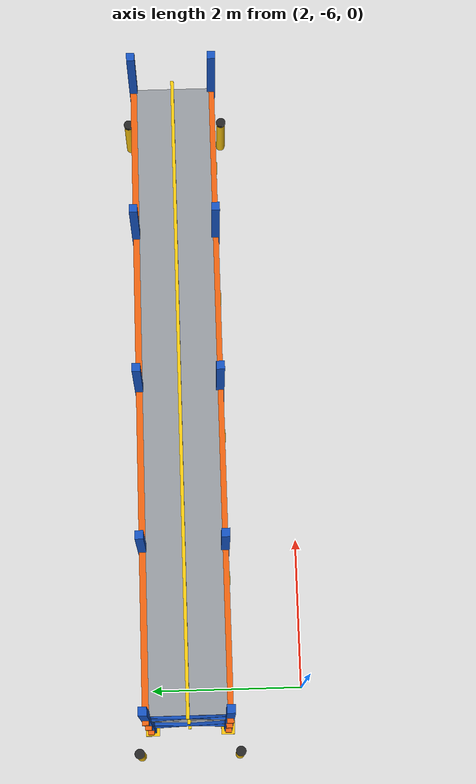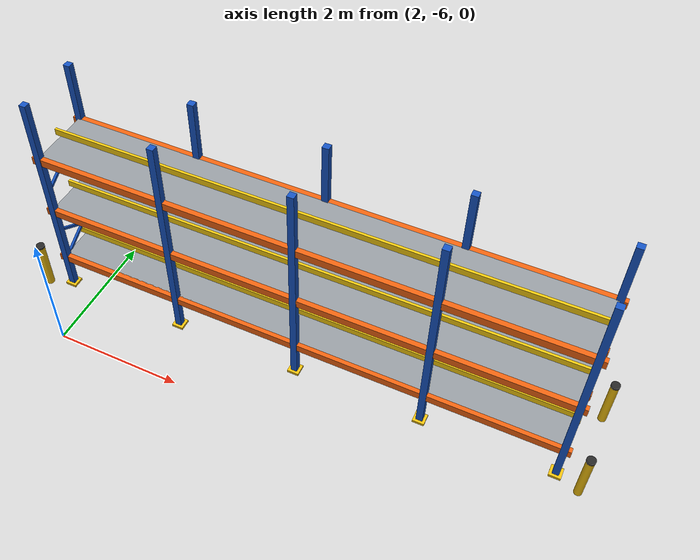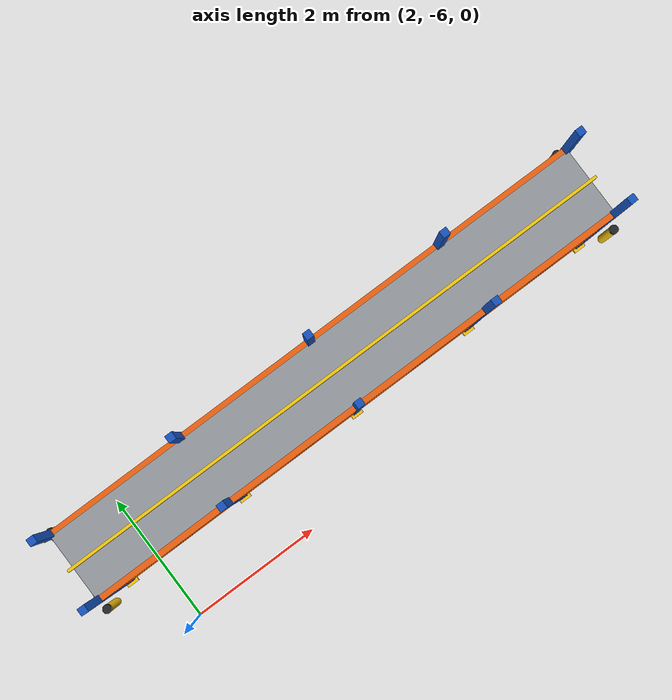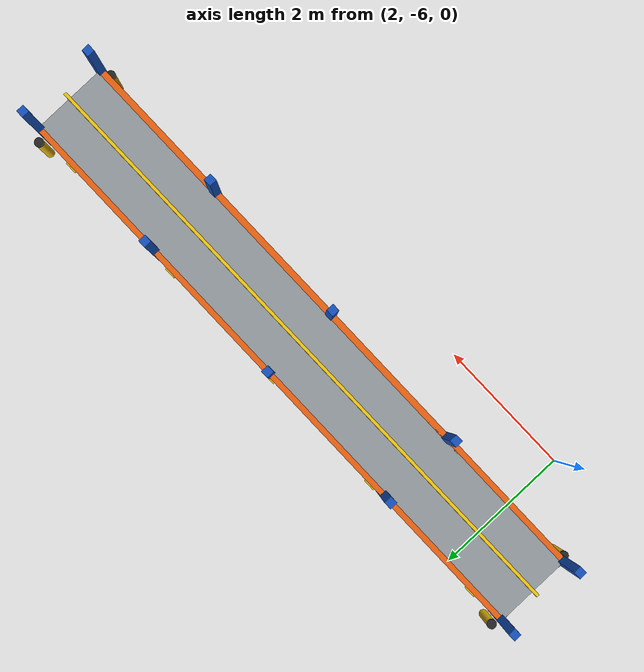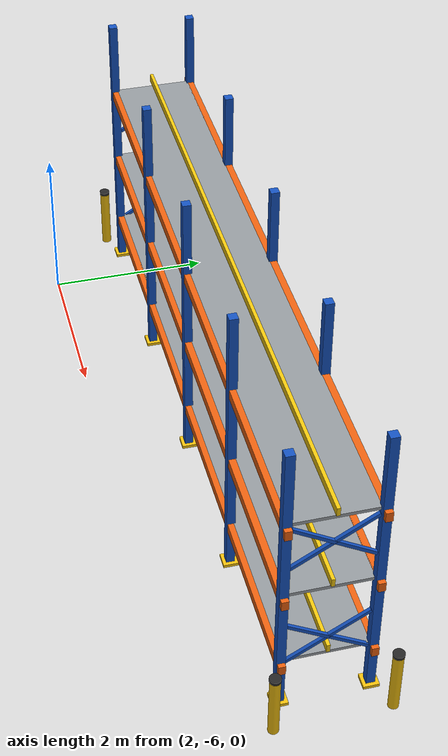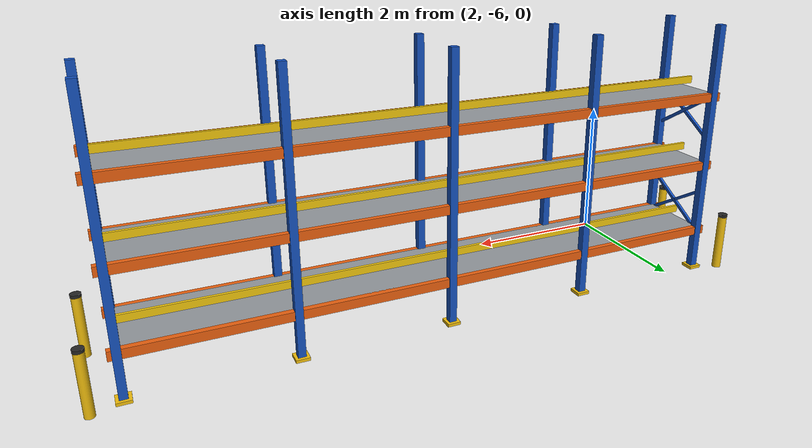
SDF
<sdf version="1.8">
 <world name="warehouse_3d">
  <model name="Rack_B_East">
   <static>true</static>
   <pose>5.50 -4.50 0 0 0 0</pose>
   <link name="col_0_0">
    <pose>-4.0000 -0.5000 1.8000 0.0000 0.0000 0.0000</pose>
    <collision name="col_0_0_col"><geometry><box><size>0.1000 0.1000 3.6000</size></box></geometry></collision>
    <visual name="col_0_0_vis">
     <geometry><box><size>0.1000 0.1000 3.6000</size></box></geometry>
     <material>
      <ambient>0.052 0.208 0.488 1.00</ambient>
      <diffuse>0.080 0.320 0.750 1.00</diffuse>
      <specular>0.15 0.15 0.15 1.0</specular>
     </material>
    </visual>
   </link>
   <link name="foot_0_0">
    <pose>-4.0000 -0.5000 0.0200 0.0000 0.0000 0.0000</pose>
    <collision name="foot_0_0_col"><geometry><box><size>0.1800 0.1800 0.0400</size></box></geometry></collision>
    <visual name="foot_0_0_vis">
     <geometry><box><size>0.1800 0.1800 0.0400</size></box></geometry>
     <material>
      <ambient>0.617 0.488 0.033 1.00</ambient>
      <diffuse>0.950 0.750 0.050 1.00</diffuse>
      <specular>0.15 0.15 0.15 1.0</specular>
     </material>
    </visual>
   </link>
   <link name="col_0_1">
    <pose>-4.0000 0.5000 1.8000 0.0000 0.0000 0.0000</pose>
    <collision name="col_0_1_col"><geometry><box><size>0.1000 0.1000 3.6000</size></box></geometry></collision>
    <visual name="col_0_1_vis">
     <geometry><box><size>0.1000 0.1000 3.6000</size></box></geometry>
     <material>
      <ambient>0.052 0.208 0.488 1.00</ambient>
      <diffuse>0.080 0.320 0.750 1.00</diffuse>
      <specular>0.15 0.15 0.15 1.0</specular>
     </material>
    </visual>
   </link>
   <link name="foot_0_1">
    <pose>-4.0000 0.5000 0.0200 0.0000 0.0000 0.0000</pose>
    <collision name="foot_0_1_col"><geometry><box><size>0.1800 0.1800 0.0400</size></box></geometry></collision>
    <visual name="foot_0_1_vis">
     <geometry><box><size>0.1800 0.1800 0.0400</size></box></geometry>
     <material>
      <ambient>0.617 0.488 0.033 1.00</ambient>
      <diffuse>0.950 0.750 0.050 1.00</diffuse>
      <specular>0.15 0.15 0.15 1.0</specular>
     </material>
    </visual>
   </link>
   <link name="col_1_0">
    <pose>-2.0000 -0.5000 1.8000 0.0000 0.0000 0.0000</pose>
    <collision name="col_1_0_col"><geometry><box><size>0.1000 0.1000 3.6000</size></box></geometry></collision>
    <visual name="col_1_0_vis">
     <geometry><box><size>0.1000 0.1000 3.6000</size></box></geometry>
     <material>
      <ambient>0.052 0.208 0.488 1.00</ambient>
      <diffuse>0.080 0.320 0.750 1.00</diffuse>
      <specular>0.15 0.15 0.15 1.0</specular>
     </material>
    </visual>
   </link>
   <link name="foot_1_0">
    <pose>-2.0000 -0.5000 0.0200 0.0000 0.0000 0.0000</pose>
    <collision name="foot_1_0_col"><geometry><box><size>0.1800 0.1800 0.0400</size></box></geometry></collision>
    <visual name="foot_1_0_vis">
     <geometry><box><size>0.1800 0.1800 0.0400</size></box></geometry>
     <material>
      <ambient>0.617 0.488 0.033 1.00</ambient>
      <diffuse>0.950 0.750 0.050 1.00</diffuse>
      <specular>0.15 0.15 0.15 1.0</specular>
     </material>
    </visual>
   </link>
   <link name="col_1_1">
    <pose>-2.0000 0.5000 1.8000 0.0000 0.0000 0.0000</pose>
    <collision name="col_1_1_col"><geometry><box><size>0.1000 0.1000 3.6000</size></box></geometry></collision>
    <visual name="col_1_1_vis">
     <geometry><box><size>0.1000 0.1000 3.6000</size></box></geometry>
     <material>
      <ambient>0.052 0.208 0.488 1.00</ambient>
      <diffuse>0.080 0.320 0.750 1.00</diffuse>
      <specular>0.15 0.15 0.15 1.0</specular>
     </material>
    </visual>
   </link>
   <link name="foot_1_1">
    <pose>-2.0000 0.5000 0.0200 0.0000 0.0000 0.0000</pose>
    <collision name="foot_1_1_col"><geometry><box><size>0.1800 0.1800 0.0400</size></box></geometry></collision>
    <visual name="foot_1_1_vis">
     <geometry><box><size>0.1800 0.1800 0.0400</size></box></geometry>
     <material>
      <ambient>0.617 0.488 0.033 1.00</ambient>
      <diffuse>0.950 0.750 0.050 1.00</diffuse>
      <specular>0.15 0.15 0.15 1.0</specular>
     </material>
    </visual>
   </link>
   <link name="col_2_0">
    <pose>0.0000 -0.5000 1.8000 0.0000 0.0000 0.0000</pose>
    <collision name="col_2_0_col"><geometry><box><size>0.1000 0.1000 3.6000</size></box></geometry></collision>
    <visual name="col_2_0_vis">
     <geometry><box><size>0.1000 0.1000 3.6000</size></box></geometry>
     <material>
      <ambient>0.052 0.208 0.488 1.00</ambient>
      <diffuse>0.080 0.320 0.750 1.00</diffuse>
      <specular>0.15 0.15 0.15 1.0</specular>
     </material>
    </visual>
   </link>
   <link name="foot_2_0">
    <pose>0.0000 -0.5000 0.0200 0.0000 0.0000 0.0000</pose>
    <collision name="foot_2_0_col"><geometry><box><size>0.1800 0.1800 0.0400</size></box></geometry></collision>
    <visual name="foot_2_0_vis">
     <geometry><box><size>0.1800 0.1800 0.0400</size></box></geometry>
     <material>
      <ambient>0.617 0.488 0.033 1.00</ambient>
      <diffuse>0.950 0.750 0.050 1.00</diffuse>
      <specular>0.15 0.15 0.15 1.0</specular>
     </material>
    </visual>
   </link>
   <link name="col_2_1">
    <pose>0.0000 0.5000 1.8000 0.0000 0.0000 0.0000</pose>
    <collision name="col_2_1_col"><geometry><box><size>0.1000 0.1000 3.6000</size></box></geometry></collision>
    <visual name="col_2_1_vis">
     <geometry><box><size>0.1000 0.1000 3.6000</size></box></geometry>
     <material>
      <ambient>0.052 0.208 0.488 1.00</ambient>
      <diffuse>0.080 0.320 0.750 1.00</diffuse>
      <specular>0.15 0.15 0.15 1.0</specular>
     </material>
    </visual>
   </link>
   <link name="foot_2_1">
    <pose>0.0000 0.5000 0.0200 0.0000 0.0000 0.0000</pose>
    <collision name="foot_2_1_col"><geometry><box><size>0.1800 0.1800 0.0400</size></box></geometry></collision>
    <visual name="foot_2_1_vis">
     <geometry><box><size>0.1800 0.1800 0.0400</size></box></geometry>
     <material>
      <ambient>0.617 0.488 0.033 1.00</ambient>
      <diffuse>0.950 0.750 0.050 1.00</diffuse>
      <specular>0.15 0.15 0.15 1.0</specular>
     </material>
    </visual>
   </link>
   <link name="col_3_0">
    <pose>2.0000 -0.5000 1.8000 0.0000 0.0000 0.0000</pose>
    <collision name="col_3_0_col"><geometry><box><size>0.1000 0.1000 3.6000</size></box></geometry></collision>
    <visual name="col_3_0_vis">
     <geometry><box><size>0.1000 0.1000 3.6000</size></box></geometry>
     <material>
      <ambient>0.052 0.208 0.488 1.00</ambient>
      <diffuse>0.080 0.320 0.750 1.00</diffuse>
      <specular>0.15 0.15 0.15 1.0</specular>
     </material>
    </visual>
   </link>
   <link name="foot_3_0">
    <pose>2.0000 -0.5000 0.0200 0.0000 0.0000 0.0000</pose>
    <collision name="foot_3_0_col"><geometry><box><size>0.1800 0.1800 0.0400</size></box></geometry></collision>
    <visual name="foot_3_0_vis">
     <geometry><box><size>0.1800 0.1800 0.0400</size></box></geometry>
     <material>
      <ambient>0.617 0.488 0.033 1.00</ambient>
      <diffuse>0.950 0.750 0.050 1.00</diffuse>
      <specular>0.15 0.15 0.15 1.0</specular>
     </material>
    </visual>
   </link>
   <link name="col_3_1">
    <pose>2.0000 0.5000 1.8000 0.0000 0.0000 0.0000</pose>
    <collision name="col_3_1_col"><geometry><box><size>0.1000 0.1000 3.6000</size></box></geometry></collision>
    <visual name="col_3_1_vis">
     <geometry><box><size>0.1000 0.1000 3.6000</size></box></geometry>
     <material>
      <ambient>0.052 0.208 0.488 1.00</ambient>
      <diffuse>0.080 0.320 0.750 1.00</diffuse>
      <specular>0.15 0.15 0.15 1.0</specular>
     </material>
    </visual>
   </link>
   <link name="foot_3_1">
    <pose>2.0000 0.5000 0.0200 0.0000 0.0000 0.0000</pose>
    <collision name="foot_3_1_col"><geometry><box><size>0.1800 0.1800 0.0400</size></box></geometry></collision>
    <visual name="foot_3_1_vis">
     <geometry><box><size>0.1800 0.1800 0.0400</size></box></geometry>
     <material>
      <ambient>0.617 0.488 0.033 1.00</ambient>
      <diffuse>0.950 0.750 0.050 1.00</diffuse>
      <specular>0.15 0.15 0.15 1.0</specular>
     </material>
    </visual>
   </link>
   <link name="col_4_0">
    <pose>4.0000 -0.5000 1.8000 0.0000 0.0000 0.0000</pose>
    <collision name="col_4_0_col"><geometry><box><size>0.1000 0.1000 3.6000</size></box></geometry></collision>
    <visual name="col_4_0_vis">
     <geometry><box><size>0.1000 0.1000 3.6000</size></box></geometry>
     <material>
      <ambient>0.052 0.208 0.488 1.00</ambient>
      <diffuse>0.080 0.320 0.750 1.00</diffuse>
      <specular>0.15 0.15 0.15 1.0</specular>
     </material>
    </visual>
   </link>
   <link name="foot_4_0">
    <pose>4.0000 -0.5000 0.0200 0.0000 0.0000 0.0000</pose>
    <collision name="foot_4_0_col"><geometry><box><size>0.1800 0.1800 0.0400</size></box></geometry></collision>
    <visual name="foot_4_0_vis">
     <geometry><box><size>0.1800 0.1800 0.0400</size></box></geometry>
     <material>
      <ambient>0.617 0.488 0.033 1.00</ambient>
      <diffuse>0.950 0.750 0.050 1.00</diffuse>
      <specular>0.15 0.15 0.15 1.0</specular>
     </material>
    </visual>
   </link>
   <link name="col_4_1">
    <pose>4.0000 0.5000 1.8000 0.0000 0.0000 0.0000</pose>
    <collision name="col_4_1_col"><geometry><box><size>0.1000 0.1000 3.6000</size></box></geometry></collision>
    <visual name="col_4_1_vis">
     <geometry><box><size>0.1000 0.1000 3.6000</size></box></geometry>
     <material>
      <ambient>0.052 0.208 0.488 1.00</ambient>
      <diffuse>0.080 0.320 0.750 1.00</diffuse>
      <specular>0.15 0.15 0.15 1.0</specular>
     </material>
    </visual>
   </link>
   <link name="foot_4_1">
    <pose>4.0000 0.5000 0.0200 0.0000 0.0000 0.0000</pose>
    <collision name="foot_4_1_col"><geometry><box><size>0.1800 0.1800 0.0400</size></box></geometry></collision>
    <visual name="foot_4_1_vis">
     <geometry><box><size>0.1800 0.1800 0.0400</size></box></geometry>
     <material>
      <ambient>0.617 0.488 0.033 1.00</ambient>
      <diffuse>0.950 0.750 0.050 1.00</diffuse>
      <specular>0.15 0.15 0.15 1.0</specular>
     </material>
    </visual>
   </link>
   <link name="x_brace_low_1_w">
    <pose>-4.0000 0.0000 0.9000 0.5500 0.0000 0.0000</pose>
    <visual name="x_brace_low_1_w_vis">
     <geometry><box><size>0.0400 1.0500 0.0400</size></box></geometry>
     <material>
      <ambient>0.052 0.208 0.488 1.00</ambient>
      <diffuse>0.080 0.320 0.750 1.00</diffuse>
      <specular>0.15 0.15 0.15 1.0</specular>
     </material>
    </visual>
   </link>
   <link name="x_brace_low_2_w">
    <pose>-4.0000 0.0000 0.9000 -0.5500 0.0000 0.0000</pose>
    <visual name="x_brace_low_2_w_vis">
     <geometry><box><size>0.0400 1.0500 0.0400</size></box></geometry>
     <material>
      <ambient>0.052 0.208 0.488 1.00</ambient>
      <diffuse>0.080 0.320 0.750 1.00</diffuse>
      <specular>0.15 0.15 0.15 1.0</specular>
     </material>
    </visual>
   </link>
   <link name="x_brace_hi_1_w">
    <pose>-4.0000 0.0000 2.3000 0.5500 0.0000 0.0000</pose>
    <visual name="x_brace_hi_1_w_vis">
     <geometry><box><size>0.0400 1.0500 0.0400</size></box></geometry>
     <material>
      <ambient>0.052 0.208 0.488 1.00</ambient>
      <diffuse>0.080 0.320 0.750 1.00</diffuse>
      <specular>0.15 0.15 0.15 1.0</specular>
     </material>
    </visual>
   </link>
   <link name="x_brace_hi_2_w">
    <pose>-4.0000 0.0000 2.3000 -0.5500 0.0000 0.0000</pose>
    <visual name="x_brace_hi_2_w_vis">
     <geometry><box><size>0.0400 1.0500 0.0400</size></box></geometry>
     <material>
      <ambient>0.052 0.208 0.488 1.00</ambient>
      <diffuse>0.080 0.320 0.750 1.00</diffuse>
      <specular>0.15 0.15 0.15 1.0</specular>
     </material>
    </visual>
   </link>
   <link name="x_brace_low_1_e">
    <pose>4.0000 0.0000 0.9000 0.5500 0.0000 0.0000</pose>
    <visual name="x_brace_low_1_e_vis">
     <geometry><box><size>0.0400 1.0500 0.0400</size></box></geometry>
     <material>
      <ambient>0.052 0.208 0.488 1.00</ambient>
      <diffuse>0.080 0.320 0.750 1.00</diffuse>
      <specular>0.15 0.15 0.15 1.0</specular>
     </material>
    </visual>
   </link>
   <link name="x_brace_low_2_e">
    <pose>4.0000 0.0000 0.9000 -0.5500 0.0000 0.0000</pose>
    <visual name="x_brace_low_2_e_vis">
     <geometry><box><size>0.0400 1.0500 0.0400</size></box></geometry>
     <material>
      <ambient>0.052 0.208 0.488 1.00</ambient>
      <diffuse>0.080 0.320 0.750 1.00</diffuse>
      <specular>0.15 0.15 0.15 1.0</specular>
     </material>
    </visual>
   </link>
   <link name="x_brace_hi_1_e">
    <pose>4.0000 0.0000 2.3000 0.5500 0.0000 0.0000</pose>
    <visual name="x_brace_hi_1_e_vis">
     <geometry><box><size>0.0400 1.0500 0.0400</size></box></geometry>
     <material>
      <ambient>0.052 0.208 0.488 1.00</ambient>
      <diffuse>0.080 0.320 0.750 1.00</diffuse>
      <specular>0.15 0.15 0.15 1.0</specular>
     </material>
    </visual>
   </link>
   <link name="x_brace_hi_2_e">
    <pose>4.0000 0.0000 2.3000 -0.5500 0.0000 0.0000</pose>
    <visual name="x_brace_hi_2_e_vis">
     <geometry><box><size>0.0400 1.0500 0.0400</size></box></geometry>
     <material>
      <ambient>0.052 0.208 0.488 1.00</ambient>
      <diffuse>0.080 0.320 0.750 1.00</diffuse>
      <specular>0.15 0.15 0.15 1.0</specular>
     </material>
    </visual>
   </link>
   <link name="beam_front_0">
    <pose>0.0000 0.5000 0.6000 0.0000 0.0000 0.0000</pose>
    <collision name="beam_front_0_col">
     <geometry><box><size>8.2000 0.0800 0.1200</size></box></geometry>
    </collision>
    <visual name="beam_front_0_vis">
     <geometry><box><size>8.2000 0.0800 0.1200</size></box></geometry>
     <material>
      <ambient>0.598 0.247 0.039 1.00</ambient>
      <diffuse>0.920 0.380 0.060 1.00</diffuse>
      <specular>0.15 0.15 0.15 1.0</specular>
     </material>
    </visual>
   </link>
   <link name="beam_rear_0">
    <pose>0.0000 -0.5000 0.6000 0.0000 0.0000 0.0000</pose>
    <collision name="beam_rear_0_col">
     <geometry><box><size>8.2000 0.0800 0.1200</size></box></geometry>
    </collision>
    <visual name="beam_rear_0_vis">
     <geometry><box><size>8.2000 0.0800 0.1200</size></box></geometry>
     <material>
      <ambient>0.598 0.247 0.039 1.00</ambient>
      <diffuse>0.920 0.380 0.060 1.00</diffuse>
      <specular>0.15 0.15 0.15 1.0</specular>
     </material>
    </visual>
   </link>
   <link name="deck_0">
    <pose>0.0000 0.0000 0.6400 0.0000 0.0000 0.0000</pose>
    <collision name="deck_0_col"><geometry><box><size>8.0000 0.9400 0.0400</size></box></geometry></collision>
    <visual name="deck_0_vis">
     <geometry><box><size>8.0000 0.9400 0.0400</size></box></geometry>
     <material>
      <ambient>0.377 0.390 0.403 1.00</ambient>
      <diffuse>0.580 0.600 0.620 1.00</diffuse>
      <specular>0.15 0.15 0.15 1.0</specular>
     </material>
    </visual>
   </link>
   <link name="backstop_0">
    <pose>0.0000 0.0000 0.7500 0.0000 0.0000 0.0000</pose>
    <visual name="backstop_0_vis">
     <geometry><box><size>8.1000 0.0400 0.1000</size></box></geometry>
     <material>
      <ambient>0.617 0.507 0.033 1.00</ambient>
      <diffuse>0.950 0.780 0.050 1.00</diffuse>
      <specular>0.15 0.15 0.15 1.0</specular>
     </material>
    </visual>
   </link>
   <link name="beam_front_1">
    <pose>0.0000 0.5000 1.6000 0.0000 0.0000 0.0000</pose>
    <collision name="beam_front_1_col">
     <geometry><box><size>8.2000 0.0800 0.1200</size></box></geometry>
    </collision>
    <visual name="beam_front_1_vis">
     <geometry><box><size>8.2000 0.0800 0.1200</size></box></geometry>
     <material>
      <ambient>0.598 0.247 0.039 1.00</ambient>
      <diffuse>0.920 0.380 0.060 1.00</diffuse>
      <specular>0.15 0.15 0.15 1.0</specular>
     </material>
    </visual>
   </link>
   <link name="beam_rear_1">
    <pose>0.0000 -0.5000 1.6000 0.0000 0.0000 0.0000</pose>
    <collision name="beam_rear_1_col">
     <geometry><box><size>8.2000 0.0800 0.1200</size></box></geometry>
    </collision>
    <visual name="beam_rear_1_vis">
     <geometry><box><size>8.2000 0.0800 0.1200</size></box></geometry>
     <material>
      <ambient>0.598 0.247 0.039 1.00</ambient>
      <diffuse>0.920 0.380 0.060 1.00</diffuse>
      <specular>0.15 0.15 0.15 1.0</specular>
     </material>
    </visual>
   </link>
   <link name="deck_1">
    <pose>0.0000 0.0000 1.6400 0.0000 0.0000 0.0000</pose>
    <collision name="deck_1_col"><geometry><box><size>8.0000 0.9400 0.0400</size></box></geometry></collision>
    <visual name="deck_1_vis">
     <geometry><box><size>8.0000 0.9400 0.0400</size></box></geometry>
     <material>
      <ambient>0.377 0.390 0.403 1.00</ambient>
      <diffuse>0.580 0.600 0.620 1.00</diffuse>
      <specular>0.15 0.15 0.15 1.0</specular>
     </material>
    </visual>
   </link>
   <link name="backstop_1">
    <pose>0.0000 0.0000 1.7500 0.0000 0.0000 0.0000</pose>
    <visual name="backstop_1_vis">
     <geometry><box><size>8.1000 0.0400 0.1000</size></box></geometry>
     <material>
      <ambient>0.617 0.507 0.033 1.00</ambient>
      <diffuse>0.950 0.780 0.050 1.00</diffuse>
      <specular>0.15 0.15 0.15 1.0</specular>
     </material>
    </visual>
   </link>
   <link name="beam_front_2">
    <pose>0.0000 0.5000 2.6000 0.0000 0.0000 0.0000</pose>
    <collision name="beam_front_2_col">
     <geometry><box><size>8.2000 0.0800 0.1200</size></box></geometry>
    </collision>
    <visual name="beam_front_2_vis">
     <geometry><box><size>8.2000 0.0800 0.1200</size></box></geometry>
     <material>
      <ambient>0.598 0.247 0.039 1.00</ambient>
      <diffuse>0.920 0.380 0.060 1.00</diffuse>
      <specular>0.15 0.15 0.15 1.0</specular>
     </material>
    </visual>
   </link>
   <link name="beam_rear_2">
    <pose>0.0000 -0.5000 2.6000 0.0000 0.0000 0.0000</pose>
    <collision name="beam_rear_2_col">
     <geometry><box><size>8.2000 0.0800 0.1200</size></box></geometry>
    </collision>
    <visual name="beam_rear_2_vis">
     <geometry><box><size>8.2000 0.0800 0.1200</size></box></geometry>
     <material>
      <ambient>0.598 0.247 0.039 1.00</ambient>
      <diffuse>0.920 0.380 0.060 1.00</diffuse>
      <specular>0.15 0.15 0.15 1.0</specular>
     </material>
    </visual>
   </link>
   <link name="deck_2">
    <pose>0.0000 0.0000 2.6400 0.0000 0.0000 0.0000</pose>
    <collision name="deck_2_col"><geometry><box><size>8.0000 0.9400 0.0400</size></box></geometry></collision>
    <visual name="deck_2_vis">
     <geometry><box><size>8.0000 0.9400 0.0400</size></box></geometry>
     <material>
      <ambient>0.377 0.390 0.403 1.00</ambient>
      <diffuse>0.580 0.600 0.620 1.00</diffuse>
      <specular>0.15 0.15 0.15 1.0</specular>
     </material>
    </visual>
   </link>
   <link name="backstop_2">
    <pose>0.0000 0.0000 2.7500 0.0000 0.0000 0.0000</pose>
    <visual name="backstop_2_vis">
     <geometry><box><size>8.1000 0.0400 0.1000</size></box></geometry>
     <material>
      <ambient>0.617 0.507 0.033 1.00</ambient>
      <diffuse>0.950 0.780 0.050 1.00</diffuse>
      <specular>0.15 0.15 0.15 1.0</specular>
     </material>
    </visual>
   </link>
   <link name="bollard_0">
    <pose>-4.3500 -0.6500 0.4000 0.0000 0.0000 0.0000</pose>
    <collision name="bollard_0_col">
     <geometry><cylinder><radius>0.0600</radius><length>0.8000</length></cylinder></geometry>
    </collision>
    <visual name="bollard_0_vis">
     <geometry><cylinder><radius>0.0600</radius><length>0.8000</length></cylinder></geometry>
     <material>
      <ambient>0.617 0.488 0.033 1.00</ambient>
      <diffuse>0.950 0.750 0.050 1.00</diffuse>
      <specular>0.2 0.2 0.2 1.0</specular>
     </material>
    </visual>
   </link>
   <link name="bollard_cap_0">
    <pose>-4.3500 -0.6500 0.8200 0.0000 0.0000 0.0000</pose>
    <collision name="bollard_cap_0_col">
     <geometry><cylinder><radius>0.0650</radius><length>0.0400</length></cylinder></geometry>
    </collision>
    <visual name="bollard_cap_0_vis">
     <geometry><cylinder><radius>0.0650</radius><length>0.0400</length></cylinder></geometry>
     <material>
      <ambient>0.098 0.098 0.098 1.00</ambient>
      <diffuse>0.150 0.150 0.150 1.00</diffuse>
      <specular>0.2 0.2 0.2 1.0</specular>
     </material>
    </visual>
   </link>
   <link name="bollard_1">
    <pose>-4.3500 0.6500 0.4000 0.0000 0.0000 0.0000</pose>
    <collision name="bollard_1_col">
     <geometry><cylinder><radius>0.0600</radius><length>0.8000</length></cylinder></geometry>
    </collision>
    <visual name="bollard_1_vis">
     <geometry><cylinder><radius>0.0600</radius><length>0.8000</length></cylinder></geometry>
     <material>
      <ambient>0.617 0.488 0.033 1.00</ambient>
      <diffuse>0.950 0.750 0.050 1.00</diffuse>
      <specular>0.2 0.2 0.2 1.0</specular>
     </material>
    </visual>
   </link>
   <link name="bollard_cap_1">
    <pose>-4.3500 0.6500 0.8200 0.0000 0.0000 0.0000</pose>
    <collision name="bollard_cap_1_col">
     <geometry><cylinder><radius>0.0650</radius><length>0.0400</length></cylinder></geometry>
    </collision>
    <visual name="bollard_cap_1_vis">
     <geometry><cylinder><radius>0.0650</radius><length>0.0400</length></cylinder></geometry>
     <material>
      <ambient>0.098 0.098 0.098 1.00</ambient>
      <diffuse>0.150 0.150 0.150 1.00</diffuse>
      <specular>0.2 0.2 0.2 1.0</specular>
     </material>
    </visual>
   </link>
   <link name="bollard_2">
    <pose>4.3500 -0.6500 0.4000 0.0000 0.0000 0.0000</pose>
    <collision name="bollard_2_col">
     <geometry><cylinder><radius>0.0600</radius><length>0.8000</length></cylinder></geometry>
    </collision>
    <visual name="bollard_2_vis">
     <geometry><cylinder><radius>0.0600</radius><length>0.8000</length></cylinder></geometry>
     <material>
      <ambient>0.617 0.488 0.033 1.00</ambient>
      <diffuse>0.950 0.750 0.050 1.00</diffuse>
      <specular>0.2 0.2 0.2 1.0</specular>
     </material>
    </visual>
   </link>
   <link name="bollard_cap_2">
    <pose>4.3500 -0.6500 0.8200 0.0000 0.0000 0.0000</pose>
    <collision name="bollard_cap_2_col">
     <geometry><cylinder><radius>0.0650</radius><length>0.0400</length></cylinder></geometry>
    </collision>
    <visual name="bollard_cap_2_vis">
     <geometry><cylinder><radius>0.0650</radius><length>0.0400</length></cylinder></geometry>
     <material>
      <ambient>0.098 0.098 0.098 1.00</ambient>
      <diffuse>0.150 0.150 0.150 1.00</diffuse>
      <specular>0.2 0.2 0.2 1.0</specular>
     </material>
    </visual>
   </link>
   <link name="bollard_3">
    <pose>4.3500 0.6500 0.4000 0.0000 0.0000 0.0000</pose>
    <collision name="bollard_3_col">
     <geometry><cylinder><radius>0.0600</radius><length>0.8000</length></cylinder></geometry>
    </collision>
    <visual name="bollard_3_vis">
     <geometry><cylinder><radius>0.0600</radius><length>0.8000</length></cylinder></geometry>
     <material>
      <ambient>0.617 0.488 0.033 1.00</ambient>
      <diffuse>0.950 0.750 0.050 1.00</diffuse>
      <specular>0.2 0.2 0.2 1.0</specular>
     </material>
    </visual>
   </link>
   <link name="bollard_cap_3">
    <pose>4.3500 0.6500 0.8200 0.0000 0.0000 0.0000</pose>
    <collision name="bollard_cap_3_col">
     <geometry><cylinder><radius>0.0650</radius><length>0.0400</length></cylinder></geometry>
    </collision>
    <visual name="bollard_cap_3_vis">
     <geometry><cylinder><radius>0.0650</radius><length>0.0400</length></cylinder></geometry>
     <material>
      <ambient>0.098 0.098 0.098 1.00</ambient>
      <diffuse>0.150 0.150 0.150 1.00</diffuse>
      <specular>0.2 0.2 0.2 1.0</specular>
     </material>
    </visual>
   </link>
  </model>
 </world>
</sdf>
